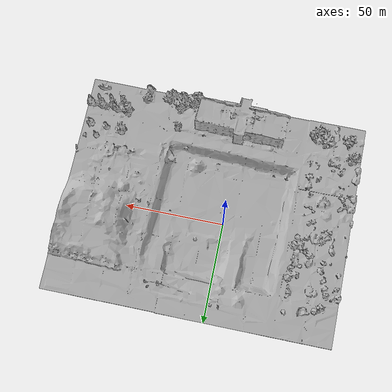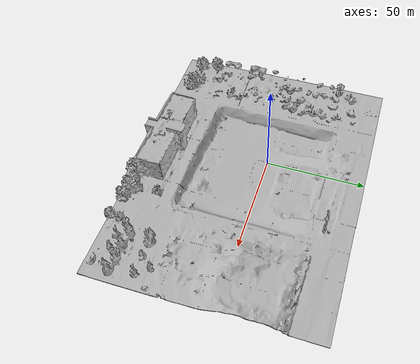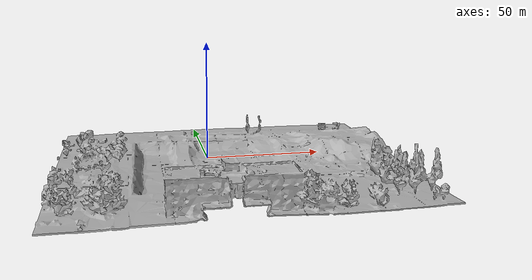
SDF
<?xml version="1.0"?>
<sdf version="1.6">
    <world name='urjc_excavation_world'>

        <!-- Physis Engine Configuration -->
        <physics name="5ms" type="ignored">
            <max_step_size>0.005</max_step_size>
            <real_time_factor>1.0</real_time_factor>
        </physics>

        <plugin entity_name="*" entity_type="world" filename="gz-sim-physics-system" name="gz::sim::systems::Physics"/>
        <plugin entity_name="*" entity_type="world" filename="gz-sim-user-commands-system" name="gz::sim::systems::UserCommands"/>
        <plugin entity_name="*" entity_type="world" filename="gz-sim-scene-broadcaster-system" name="gz::sim::systems::SceneBroadcaster"/>
        <plugin entity_name="*" entity_type="world" filename="gz-sim-contact-system" name="gz::sim::systems::Contact"/>
        <plugin entity_name="*" entity_type="world" filename="gz-sim-imu-system" name="gz::sim::systems::Imu"/>
        <plugin entity_name="*" entity_type="world" filename="gz-sim-air-pressure-system" name="gz::sim::systems::AirPressure"/>
        <plugin entity_name="*" entity_type="world" filename="gz-sim-air-speed-system" name="gz::sim::systems::AirSpeed"/>
        <plugin entity_name="*" entity_type="world" filename="gz-sim-apply-link-wrench-system" name="gz::sim::systems::ApplyLinkWrench"/>
        <plugin entity_name="*" entity_type="world" filename="gz-sim-navsat-system" name="gz::sim::systems::NavSat"/>
        <plugin entity_name="*" entity_type="world" filename="gz-sim-magnetometer-system" name="gz::sim::systems::Magnetometer"/>
        <plugin entity_name="*" entity_type="world" filename="gz-sim-sensors-system" name="gz::sim::systems::Sensors">
            <render_engine>ogre2</render_engine>
        </plugin>

        <!-- Set the coordinates for the world origin -->
        <spherical_coordinates>
            <surface_model>EARTH_WGS84</surface_model>
            <world_frame_orientation>ENU</world_frame_orientation>
            <latitude_deg>40.284796</latitude_deg>
            <longitude_deg>-3.821407</longitude_deg>
            <elevation>675</elevation>
            <heading_deg>0</heading_deg>
        </spherical_coordinates>

        <!-- Gravity configuration -->
        <gravity>0.0 0.0 -9.8</gravity>

        <!-- Scene configuration -->
        <scene>
            <ambient>0.4 0.4 0.4 1</ambient>
            <background>0.7 0.7 0.7 1</background>
            <shadows>false</shadows>
            <grid>false</grid>
            <origin_visual>false</origin_visual>
        </scene>

        <!-- Sun Light configuration -->
        <light name='sun'
            type='directional'>
            <cast_shadows>0</cast_shadows>
            <pose>0 0 10000 0 0 0</pose>
            <diffuse>0.8 0.8 0.8 1</diffuse>
            <specular>0.2 0.2 0.2 1</specular>
            <attenuation>
                <range>1000</range>
                <constant>0.9</constant>
                <linear>0.01</linear>
                <quadratic>0.001</quadratic>
            </attenuation>
            <direction>-0.5 0.1 -0.9</direction>
        </light>

        <!-- Include the urjc_excavation model -->
        <include>
            <uri>model://urjc_excavation</uri>
        </include>
    </world>
</sdf>

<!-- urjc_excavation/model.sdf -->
<sdf version="1.5">
  <model name="ground_plane">
    <static>true</static>
    <link name="ground_plane_link">
      <collision name="collision">
        <geometry>
          <mesh>
            <uri>model://urjc_excavation/meshes/URJC_excavation.stl</uri>
          </mesh>
        </geometry>
          <surface>
            <friction>
              <ode>
                <mu>0.9000000</mu>
                <mu2>0.1000000</mu2>
                <fdir1>0.000000 0.000000 1.000000</fdir1>
              </ode>
            </friction>
            <bounce>
              <restitution_coefficient>0.000000</restitution_coefficient>
              <threshold>100000.000000</threshold>
            </bounce>
            <contact>
              <ode>
                <soft_cfm>9.000000</soft_cfm>
                <soft_erp>9.000000</soft_erp>
                <kp>10000.000000</kp>
                <kd>1.000000</kd>
                <max_vel>100.000000</max_vel>
                <min_depth>0.001000</min_depth>
              </ode>
            </contact>
          </surface>
      </collision>
      <visual name="visual">
        <geometry>
          <mesh>
            <uri>model://urjc_excavation/meshes/URJC_excavation.dae</uri>
          </mesh>
        </geometry>
      </visual>
    </link>
  </model>
</sdf>
